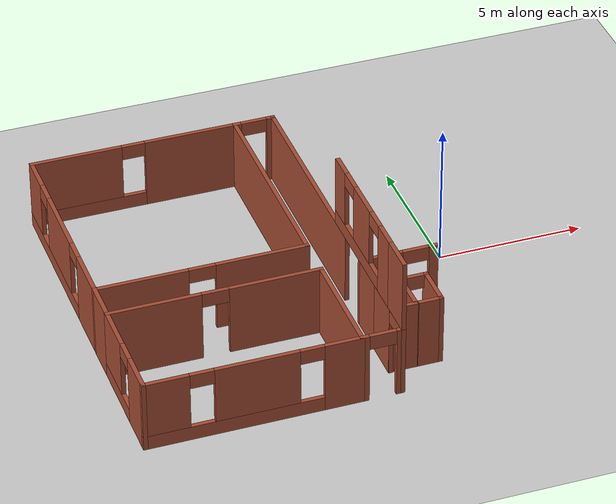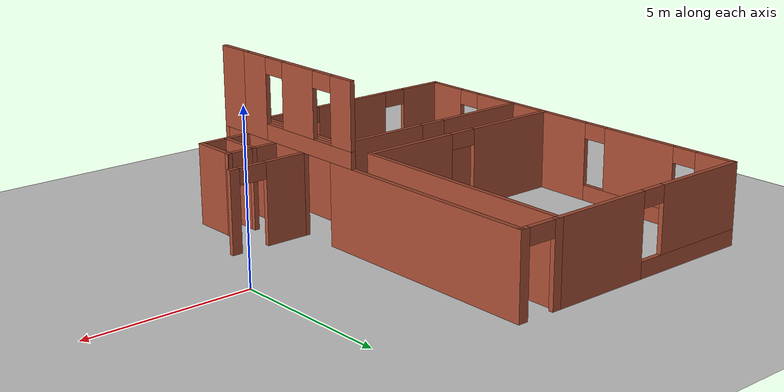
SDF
<sdf version="1.7">
 <world name="default">
  <model name="ground_plane">
   <static>1</static>
   <link name="link">
    <collision name="collision">
     <geometry><plane><normal>0 0 1</normal><size>100 100</size></plane></geometry>
     <surface>
      <contact><collide_bitmask>65535</collide_bitmask></contact>
      <friction><ode><mu>100</mu><mu2>50</mu2></ode></friction>
     </surface>
    </collision>
    <visual name="visual">
     <cast_shadows>0</cast_shadows>
     <geometry><plane><normal>0 0 1</normal><size>100 100</size></plane></geometry>
     <material>
      <script><uri>file://media/materials/scripts/gazebo.material</uri><name>Gazebo/Grey</name></script>
     </material>
    </visual>
   </link>
  </model>
  <model name="test_building">
   <link name="Wall_145">
    <collision name="Wall_145_Collision">
     <geometry><box><size>1.5 0.15 2.5</size></box></geometry>
     <pose>0 0 1.25 0 -0 0</pose>
    </collision>
    <visual name="Wall_145_Visual">
     <pose>0 0 1.25 0 -0 0</pose>
     <geometry><box><size>1.5 0.15 2.5</size></box></geometry>
     <material>
      <script><uri>file://media/materials/scripts/gazebo.material</uri><name>Gazebo/Bricks</name></script>
      <ambient>1 1 1 1</ambient>
     </material>
     <meta><layer>0</layer></meta>
    </visual>
    <pose>-3.7 -3.125 0 0 -0 -1.5708</pose>
   </link>
   <link name="Wall_146">
    <collision name="Wall_146_Collision">
     <geometry><box><size>1.5 0.15 2.5</size></box></geometry>
     <pose>0 0 1.25 0 -0 0</pose>
    </collision>
    <visual name="Wall_146_Visual">
     <pose>0 0 1.25 0 -0 0</pose>
     <geometry><box><size>1.5 0.15 2.5</size></box></geometry>
     <material>
      <script><uri>file://media/materials/scripts/gazebo.material</uri><name>Gazebo/Bricks</name></script>
      <ambient>1 1 1 1</ambient>
     </material>
     <meta><layer>0</layer></meta>
    </visual>
    <pose>-3.7 -4.475 0 0 -0 -1.5708</pose>
   </link>
   <link name="Wall_147">
    <collision name="Wall_147_Collision">
     <geometry><box><size>1 0.15 2.5</size></box></geometry>
     <pose>0 0 1.25 0 -0 0</pose>
    </collision>
    <visual name="Wall_147_Visual">
     <pose>0 0 1.25 0 -0 0</pose>
     <geometry><box><size>1 0.15 2.5</size></box></geometry>
     <material>
      <script><uri>file://media/materials/scripts/gazebo.material</uri><name>Gazebo/Bricks</name></script>
      <ambient>1 1 1 1</ambient>
     </material>
     <meta><layer>0</layer></meta>
    </visual>
    <pose>-3.275 -5.15 0 0 -0 0</pose>
   </link>
   <link name="Wall_148">
    <collision name="Wall_148_Collision">
     <geometry><box><size>1.5 0.15 2.5</size></box></geometry>
     <pose>0 0 1.25 0 -0 0</pose>
    </collision>
    <visual name="Wall_148_Visual">
     <pose>0 0 1.25 0 -0 0</pose>
     <geometry><box><size>1.5 0.15 2.5</size></box></geometry>
     <material>
      <script><uri>file://media/materials/scripts/gazebo.material</uri><name>Gazebo/Bricks</name></script>
      <ambient>1 1 1 1</ambient>
     </material>
     <meta><layer>0</layer></meta>
    </visual>
    <pose>-2.85 -4.475 0 0 -0 1.5708</pose>
   </link>
   <link name="Wall_149">
    <pose>-3.275 -3.8 0 0 -0 3.14159</pose>
    <visual name="Wall_149_Visual_0">
     <pose>-0.424986 0 1.25 0 -0 0</pose>
     <geometry><box><size>0.150029 0.15 2.5</size></box></geometry>
     <material>
      <script><uri>file://media/materials/scripts/gazebo.material</uri><name>Gazebo/Bricks</name></script>
      <ambient>1 1 1 1</ambient>
     </material>
     <meta><layer>0</layer></meta>
    </visual>
    <collision name="Wall_149_Collision_0">
     <geometry><box><size>0.150029 0.15 2.5</size></box></geometry>
     <pose>-0.424986 0 1.25 0 -0 0</pose>
    </collision>
    <visual name="Wall_149_Visual_1">
     <pose>0.425014 0 1.25 0 -0 0</pose>
     <geometry><box><size>0.149971 0.15 2.5</size></box></geometry>
     <material>
      <script><uri>file://media/materials/scripts/gazebo.material</uri><name>Gazebo/Bricks</name></script>
      <ambient>1 1 1 1</ambient>
     </material>
     <meta><layer>0</layer></meta>
    </visual>
    <collision name="Wall_149_Collision_1">
     <geometry><box><size>0.149971 0.15 2.5</size></box></geometry>
     <pose>0.425014 0 1.25 0 -0 0</pose>
    </collision>
    <visual name="Wall_149_Visual_2">
     <pose>2.9e-05 0 2.25 0 -0 0</pose>
     <geometry><box><size>0.7 0.15 0.5</size></box></geometry>
     <material>
      <script><uri>file://media/materials/scripts/gazebo.material</uri><name>Gazebo/Bricks</name></script>
      <ambient>1 1 1 1</ambient>
     </material>
     <meta><layer>0</layer></meta>
    </visual>
    <collision name="Wall_149_Collision_2">
     <geometry><box><size>0.7 0.15 0.5</size></box></geometry>
     <pose>2.9e-05 0 2.25 0 -0 0</pose>
    </collision>
   </link>
   <link name="Wall_151">
    <collision name="Wall_151_Collision">
     <geometry><box><size>1 0.15 2.5</size></box></geometry>
     <pose>0 0 1.25 0 -0 0</pose>
    </collision>
    <visual name="Wall_151_Visual">
     <pose>0 0 1.25 0 -0 0</pose>
     <geometry><box><size>1 0.15 2.5</size></box></geometry>
     <material>
      <script><uri>file://media/materials/scripts/gazebo.material</uri><name>Gazebo/Bricks</name></script>
      <ambient>1 1 1 1</ambient>
     </material>
     <meta><layer>0</layer></meta>
    </visual>
    <pose>-2.425 -5.15 0 0 -0 0</pose>
   </link>
   <link name="Wall_152">
    <collision name="Wall_152_Collision">
     <geometry><box><size>1.5 0.15 2.5</size></box></geometry>
     <pose>0 0 1.25 0 -0 0</pose>
    </collision>
    <visual name="Wall_152_Visual">
     <pose>0 0 1.25 0 -0 0</pose>
     <geometry><box><size>1.5 0.15 2.5</size></box></geometry>
     <material>
      <script><uri>file://media/materials/scripts/gazebo.material</uri><name>Gazebo/Bricks</name></script>
      <ambient>1 1 1 1</ambient>
     </material>
     <meta><layer>0</layer></meta>
    </visual>
    <pose>-2 -4.475 0 0 -0 1.5708</pose>
   </link>
   <link name="Wall_153">
    <pose>-2.425 -3.8 0 0 -0 3.14159</pose>
    <visual name="Wall_153_Visual_0">
     <pose>-0.426005 0 1.25 0 -0 0</pose>
     <geometry><box><size>0.147991 0.15 2.5</size></box></geometry>
     <material>
      <script><uri>file://media/materials/scripts/gazebo.material</uri><name>Gazebo/Bricks</name></script>
      <ambient>1 1 1 1</ambient>
     </material>
     <meta><layer>0</layer></meta>
    </visual>
    <collision name="Wall_153_Collision_0">
     <geometry><box><size>0.147991 0.15 2.5</size></box></geometry>
     <pose>-0.426005 0 1.25 0 -0 0</pose>
    </collision>
    <visual name="Wall_153_Visual_1">
     <pose>0.423995 0 1.25 0 -0 0</pose>
     <geometry><box><size>0.152009 0.15 2.5</size></box></geometry>
     <material>
      <script><uri>file://media/materials/scripts/gazebo.material</uri><name>Gazebo/Bricks</name></script>
      <ambient>1 1 1 1</ambient>
     </material>
     <meta><layer>0</layer></meta>
    </visual>
    <collision name="Wall_153_Collision_1">
     <geometry><box><size>0.152009 0.15 2.5</size></box></geometry>
     <pose>0.423995 0 1.25 0 -0 0</pose>
    </collision>
    <visual name="Wall_153_Visual_2">
     <pose>-0.002009 0 2.25 0 -0 0</pose>
     <geometry><box><size>0.7 0.15 0.5</size></box></geometry>
     <material>
      <script><uri>file://media/materials/scripts/gazebo.material</uri><name>Gazebo/Bricks</name></script>
      <ambient>1 1 1 1</ambient>
     </material>
     <meta><layer>0</layer></meta>
    </visual>
    <collision name="Wall_153_Collision_2">
     <geometry><box><size>0.7 0.15 0.5</size></box></geometry>
     <pose>-0.002009 0 2.25 0 -0 0</pose>
    </collision>
   </link>
   <link name="Wall_175">
    <pose>-2.425 -2.45 0 0 -0 0</pose>
    <visual name="Wall_175_Visual_0">
     <pose>-0.608466 0 1.25 0 -0 0</pose>
     <geometry><box><size>1.48307 0.15 2.5</size></box></geometry>
     <material>
      <script><uri>file://media/materials/scripts/gazebo.material</uri><name>Gazebo/Bricks</name></script>
      <ambient>1 1 1 1</ambient>
     </material>
     <meta><layer>0</layer></meta>
    </visual>
    <collision name="Wall_175_Collision_0">
     <geometry><box><size>1.48307 0.15 2.5</size></box></geometry>
     <pose>-0.608466 0 1.25 0 -0 0</pose>
    </collision>
    <visual name="Wall_175_Visual_1">
     <pose>1.19153 0 1.25 0 -0 0</pose>
     <geometry><box><size>0.316932 0.15 2.5</size></box></geometry>
     <material>
      <script><uri>file://media/materials/scripts/gazebo.material</uri><name>Gazebo/Bricks</name></script>
      <ambient>1 1 1 1</ambient>
     </material>
     <meta><layer>0</layer></meta>
    </visual>
    <collision name="Wall_175_Collision_1">
     <geometry><box><size>0.316932 0.15 2.5</size></box></geometry>
     <pose>1.19153 0 1.25 0 -0 0</pose>
    </collision>
    <visual name="Wall_175_Visual_2">
     <pose>0.583068 0 2.25 0 -0 0</pose>
     <geometry><box><size>0.9 0.15 0.5</size></box></geometry>
     <material>
      <script><uri>file://media/materials/scripts/gazebo.material</uri><name>Gazebo/Bricks</name></script>
      <ambient>1 1 1 1</ambient>
     </material>
     <meta><layer>0</layer></meta>
    </visual>
    <collision name="Wall_175_Collision_2">
     <geometry><box><size>0.9 0.15 0.5</size></box></geometry>
     <pose>0.583068 0 2.25 0 -0 0</pose>
    </collision>
   </link>
   <link name="Wall_188">
    <pose>-3.7 -5.7 0 0 -0 1.5708</pose>
    <visual name="Wall_188_Visual_0">
     <pose>-0.537216 0 1.25 0 -0 0</pose>
     <geometry><box><size>0.175568 0.15 2.5</size></box></geometry>
     <material>
      <script><uri>file://media/materials/scripts/gazebo.material</uri><name>Gazebo/Bricks</name></script>
      <ambient>1 1 1 1</ambient>
     </material>
     <meta><layer>0</layer></meta>
    </visual>
    <collision name="Wall_188_Collision_0">
     <geometry><box><size>0.175568 0.15 2.5</size></box></geometry>
     <pose>-0.537216 0 1.25 0 -0 0</pose>
    </collision>
    <visual name="Wall_188_Visual_1">
     <pose>0.537784 0 1.25 0 -0 0</pose>
     <geometry><box><size>0.174432 0.15 2.5</size></box></geometry>
     <material>
      <script><uri>file://media/materials/scripts/gazebo.material</uri><name>Gazebo/Bricks</name></script>
      <ambient>1 1 1 1</ambient>
     </material>
     <meta><layer>0</layer></meta>
    </visual>
    <collision name="Wall_188_Collision_1">
     <geometry><box><size>0.174432 0.15 2.5</size></box></geometry>
     <pose>0.537784 0 1.25 0 -0 0</pose>
    </collision>
    <visual name="Wall_188_Visual_2">
     <pose>0.000568 0 2.25 0 -0 0</pose>
     <geometry><box><size>0.9 0.15 0.5</size></box></geometry>
     <material>
      <script><uri>file://media/materials/scripts/gazebo.material</uri><name>Gazebo/Bricks</name></script>
      <ambient>1 1 1 1</ambient>
     </material>
     <meta><layer>0</layer></meta>
    </visual>
    <collision name="Wall_188_Collision_2">
     <geometry><box><size>0.9 0.15 0.5</size></box></geometry>
     <pose>0.000568 0 2.25 0 -0 0</pose>
    </collision>
   </link>
   <link name="Wall_194">
    <pose>-4.375 -6.25 0 0 -0 0</pose>
    <visual name="Wall_194_Visual_0">
     <pose>-0.59609 0 1.25 0 -0 0</pose>
     <geometry><box><size>0.30782 0.15 2.5</size></box></geometry>
     <material>
      <script><uri>file://media/materials/scripts/gazebo.material</uri><name>Gazebo/Bricks</name></script>
      <ambient>1 1 1 1</ambient>
     </material>
     <meta><layer>0</layer></meta>
    </visual>
    <collision name="Wall_194_Collision_0">
     <geometry><box><size>0.30782 0.15 2.5</size></box></geometry>
     <pose>-0.59609 0 1.25 0 -0 0</pose>
    </collision>
    <visual name="Wall_194_Visual_1">
     <pose>0.60391 0 1.25 0 -0 0</pose>
     <geometry><box><size>0.29218 0.15 2.5</size></box></geometry>
     <material>
      <script><uri>file://media/materials/scripts/gazebo.material</uri><name>Gazebo/Bricks</name></script>
      <ambient>1 1 1 1</ambient>
     </material>
     <meta><layer>0</layer></meta>
    </visual>
    <collision name="Wall_194_Collision_1">
     <geometry><box><size>0.29218 0.15 2.5</size></box></geometry>
     <pose>0.60391 0 1.25 0 -0 0</pose>
    </collision>
    <visual name="Wall_194_Visual_2">
     <pose>0.00782 0 2.25 0 -0 0</pose>
     <geometry><box><size>0.9 0.15 0.5</size></box></geometry>
     <material>
      <script><uri>file://media/materials/scripts/gazebo.material</uri><name>Gazebo/Bricks</name></script>
      <ambient>1 1 1 1</ambient>
     </material>
     <meta><layer>0</layer></meta>
    </visual>
    <collision name="Wall_194_Collision_2">
     <geometry><box><size>0.9 0.15 0.5</size></box></geometry>
     <pose>0.00782 0 2.25 0 -0 0</pose>
    </collision>
   </link>
   <link name="Wall_197">
    <pose>-8.6 6.25 0 0 -0 3.14159</pose>
    <visual name="Wall_197_Visual_0">
     <pose>-1.99098 0 1.25 0 -0 0</pose>
     <geometry><box><size>3.26805 0.15 2.5</size></box></geometry>
     <material>
      <script><uri>file://media/materials/scripts/gazebo.material</uri><name>Gazebo/Bricks</name></script>
      <ambient>1 1 1 1</ambient>
     </material>
     <meta><layer>0</layer></meta>
    </visual>
    <collision name="Wall_197_Collision_0">
     <geometry><box><size>3.26805 0.15 2.5</size></box></geometry>
     <pose>-1.99098 0 1.25 0 -0 0</pose>
    </collision>
    <visual name="Wall_197_Visual_1">
     <pose>1.63402 0 0.25 0 -0 0</pose>
     <geometry><box><size>3.98195 0.15 0.5</size></box></geometry>
     <material>
      <script><uri>file://media/materials/scripts/gazebo.material</uri><name>Gazebo/Bricks</name></script>
      <ambient>1 1 1 1</ambient>
     </material>
     <meta><layer>0</layer></meta>
    </visual>
    <collision name="Wall_197_Collision_1">
     <geometry><box><size>3.98195 0.15 0.5</size></box></geometry>
     <pose>1.63402 0 0.25 0 -0 0</pose>
    </collision>
    <visual name="Wall_197_Visual_2">
     <pose>2.03402 0 1.5 0 -0 0</pose>
     <geometry><box><size>3.18195 0.15 2</size></box></geometry>
     <material>
      <script><uri>file://media/materials/scripts/gazebo.material</uri><name>Gazebo/Bricks</name></script>
      <ambient>1 1 1 1</ambient>
     </material>
     <meta><layer>0</layer></meta>
    </visual>
    <collision name="Wall_197_Collision_2">
     <geometry><box><size>3.18195 0.15 2</size></box></geometry>
     <pose>2.03402 0 1.5 0 -0 0</pose>
    </collision>
    <visual name="Wall_197_Visual_3">
     <pose>0.043049 0 2.25 0 -0 0</pose>
     <geometry><box><size>0.8 0.15 0.5</size></box></geometry>
     <material>
      <script><uri>file://media/materials/scripts/gazebo.material</uri><name>Gazebo/Bricks</name></script>
      <ambient>1 1 1 1</ambient>
     </material>
     <meta><layer>0</layer></meta>
    </visual>
    <collision name="Wall_197_Collision_3">
     <geometry><box><size>0.8 0.15 0.5</size></box></geometry>
     <pose>0.043049 0 2.25 0 -0 0</pose>
    </collision>
   </link>
   <link name="Wall_201">
    <collision name="Wall_201_Collision">
     <geometry><box><size>3.95 0.15 2.5</size></box></geometry>
     <pose>0 0 1.25 0 -0 0</pose>
    </collision>
    <visual name="Wall_201_Visual">
     <pose>0 0 1.25 0 -0 0</pose>
     <geometry><box><size>3.95 0.15 2.5</size></box></geometry>
     <material>
      <script><uri>file://media/materials/scripts/gazebo.material</uri><name>Gazebo/Bricks</name></script>
      <ambient>1 1 1 1</ambient>
     </material>
     <meta><layer>0</layer></meta>
    </visual>
    <pose>-5.05 -4.35 0 0 -0 1.5708</pose>
   </link>
   <link name="Wall_204">
    <collision name="Wall_204_Collision">
     <geometry><box><size>7.5 0.15 2.5</size></box></geometry>
     <pose>0 0 1.25 0 -0 0</pose>
    </collision>
    <visual name="Wall_204_Visual">
     <pose>0 0 1.25 0 -0 0</pose>
     <geometry><box><size>7.5 0.15 2.5</size></box></geometry>
     <material>
      <script><uri>file://media/materials/scripts/gazebo.material</uri><name>Gazebo/Bricks</name></script>
      <ambient>1 1 1 1</ambient>
     </material>
     <meta><layer>0</layer></meta>
    </visual>
    <pose>-5.05 2.575 0 0 -0 1.5708</pose>
   </link>
   <link name="Wall_206">
    <pose>-8.6 -1.1 0 0 -0 3.14159</pose>
    <visual name="Wall_206_Visual_0">
     <pose>-2.03867 0 1.25 0 -0 0</pose>
     <geometry><box><size>3.17265 0.15 2.5</size></box></geometry>
     <material>
      <script><uri>file://media/materials/scripts/gazebo.material</uri><name>Gazebo/Bricks</name></script>
      <ambient>1 1 1 1</ambient>
     </material>
     <meta><layer>0</layer></meta>
    </visual>
    <collision name="Wall_206_Collision_0">
     <geometry><box><size>3.17265 0.15 2.5</size></box></geometry>
     <pose>-2.03867 0 1.25 0 -0 0</pose>
    </collision>
    <visual name="Wall_206_Visual_1">
     <pose>2.03633 0 1.25 0 -0 0</pose>
     <geometry><box><size>3.17735 0.15 2.5</size></box></geometry>
     <material>
      <script><uri>file://media/materials/scripts/gazebo.material</uri><name>Gazebo/Bricks</name></script>
      <ambient>1 1 1 1</ambient>
     </material>
     <meta><layer>0</layer></meta>
    </visual>
    <collision name="Wall_206_Collision_1">
     <geometry><box><size>3.17735 0.15 2.5</size></box></geometry>
     <pose>2.03633 0 1.25 0 -0 0</pose>
    </collision>
    <visual name="Wall_206_Visual_2">
     <pose>-0.002349 0 2.25 0 -0 0</pose>
     <geometry><box><size>0.9 0.15 0.5</size></box></geometry>
     <material>
      <script><uri>file://media/materials/scripts/gazebo.material</uri><name>Gazebo/Bricks</name></script>
      <ambient>1 1 1 1</ambient>
     </material>
     <meta><layer>0</layer></meta>
    </visual>
    <collision name="Wall_206_Collision_2">
     <geometry><box><size>0.9 0.15 0.5</size></box></geometry>
     <pose>-0.002349 0 2.25 0 -0 0</pose>
    </collision>
   </link>
   <link name="Wall_207">
    <pose>-12.15 2.575 0 0 -0 1.5708</pose>
    <visual name="Wall_207_Visual_0">
     <pose>-2.79196 0 1.25 0 -0 0</pose>
     <geometry><box><size>1.91607 0.15 2.5</size></box></geometry>
     <material>
      <script><uri>file://media/materials/scripts/gazebo.material</uri><name>Gazebo/Bricks</name></script>
      <ambient>1 1 1 1</ambient>
     </material>
     <meta><layer>0</layer></meta>
    </visual>
    <collision name="Wall_207_Collision_0">
     <geometry><box><size>1.91607 0.15 2.5</size></box></geometry>
     <pose>-2.79196 0 1.25 0 -0 0</pose>
    </collision>
    <visual name="Wall_207_Visual_1">
     <pose>0.958035 0 0.25 0 -0 0</pose>
     <geometry><box><size>5.58393 0.15 0.5</size></box></geometry>
     <material>
      <script><uri>file://media/materials/scripts/gazebo.material</uri><name>Gazebo/Bricks</name></script>
      <ambient>1 1 1 1</ambient>
     </material>
     <meta><layer>0</layer></meta>
    </visual>
    <collision name="Wall_207_Collision_1">
     <geometry><box><size>5.58393 0.15 0.5</size></box></geometry>
     <pose>0.958035 0 0.25 0 -0 0</pose>
    </collision>
    <visual name="Wall_207_Visual_2">
     <pose>0.281034 0 1.5 0 -0 0</pose>
     <geometry><box><size>2.62993 0.15 2</size></box></geometry>
     <material>
      <script><uri>file://media/materials/scripts/gazebo.material</uri><name>Gazebo/Bricks</name></script>
      <ambient>1 1 1 1</ambient>
     </material>
     <meta><layer>0</layer></meta>
    </visual>
    <collision name="Wall_207_Collision_2">
     <geometry><box><size>2.62993 0.15 2</size></box></geometry>
     <pose>0.281034 0 1.5 0 -0 0</pose>
    </collision>
    <visual name="Wall_207_Visual_3">
     <pose>3.073 0 1.5 0 -0 0</pose>
     <geometry><box><size>1.354 0.15 2</size></box></geometry>
     <material>
      <script><uri>file://media/materials/scripts/gazebo.material</uri><name>Gazebo/Bricks</name></script>
      <ambient>1 1 1 1</ambient>
     </material>
     <meta><layer>0</layer></meta>
    </visual>
    <collision name="Wall_207_Collision_3">
     <geometry><box><size>1.354 0.15 2</size></box></geometry>
     <pose>3.073 0 1.5 0 -0 0</pose>
    </collision>
    <visual name="Wall_207_Visual_4">
     <pose>-1.43393 0 2.25 0 -0 0</pose>
     <geometry><box><size>0.8 0.15 0.5</size></box></geometry>
     <material>
      <script><uri>file://media/materials/scripts/gazebo.material</uri><name>Gazebo/Bricks</name></script>
      <ambient>1 1 1 1</ambient>
     </material>
     <meta><layer>0</layer></meta>
    </visual>
    <collision name="Wall_207_Collision_4">
     <geometry><box><size>0.8 0.15 0.5</size></box></geometry>
     <pose>-1.43393 0 2.25 0 -0 0</pose>
    </collision>
    <visual name="Wall_207_Visual_5">
     <pose>1.996 0 2.25 0 -0 0</pose>
     <geometry><box><size>0.8 0.15 0.5</size></box></geometry>
     <material>
      <script><uri>file://media/materials/scripts/gazebo.material</uri><name>Gazebo/Bricks</name></script>
      <ambient>1 1 1 1</ambient>
     </material>
     <meta><layer>0</layer></meta>
    </visual>
    <collision name="Wall_207_Collision_5">
     <geometry><box><size>0.8 0.15 0.5</size></box></geometry>
     <pose>1.996 0 2.25 0 -0 0</pose>
    </collision>
   </link>
   <link name="Wall_209">
    <pose>-8.6 -2.45 0 0 -0 3.14159</pose>
    <visual name="Wall_209_Visual_0">
     <pose>-2.03867 0 1.25 0 -0 0</pose>
     <geometry><box><size>3.17265 0.15 2.5</size></box></geometry>
     <material>
      <script><uri>file://media/materials/scripts/gazebo.material</uri><name>Gazebo/Bricks</name></script>
      <ambient>1 1 1 1</ambient>
     </material>
     <meta><layer>0</layer></meta>
    </visual>
    <collision name="Wall_209_Collision_0">
     <geometry><box><size>3.17265 0.15 2.5</size></box></geometry>
     <pose>-2.03867 0 1.25 0 -0 0</pose>
    </collision>
    <visual name="Wall_209_Visual_1">
     <pose>2.03633 0 1.25 0 -0 0</pose>
     <geometry><box><size>3.17735 0.15 2.5</size></box></geometry>
     <material>
      <script><uri>file://media/materials/scripts/gazebo.material</uri><name>Gazebo/Bricks</name></script>
      <ambient>1 1 1 1</ambient>
     </material>
     <meta><layer>0</layer></meta>
    </visual>
    <collision name="Wall_209_Collision_1">
     <geometry><box><size>3.17735 0.15 2.5</size></box></geometry>
     <pose>2.03633 0 1.25 0 -0 0</pose>
    </collision>
    <visual name="Wall_209_Visual_2">
     <pose>-0.002349 0 2.25 0 -0 0</pose>
     <geometry><box><size>0.9 0.15 0.5</size></box></geometry>
     <material>
      <script><uri>file://media/materials/scripts/gazebo.material</uri><name>Gazebo/Bricks</name></script>
      <ambient>1 1 1 1</ambient>
     </material>
     <meta><layer>0</layer></meta>
    </visual>
    <collision name="Wall_209_Collision_2">
     <geometry><box><size>0.9 0.15 0.5</size></box></geometry>
     <pose>-0.002349 0 2.25 0 -0 0</pose>
    </collision>
   </link>
   <link name="Wall_210">
    <collision name="Wall_210_Collision">
     <geometry><box><size>1.5 0.15 2.5</size></box></geometry>
     <pose>0 0 1.25 0 -0 0</pose>
    </collision>
    <visual name="Wall_210_Visual">
     <pose>0 0 1.25 0 -0 0</pose>
     <geometry><box><size>1.5 0.15 2.5</size></box></geometry>
     <material>
      <script><uri>file://media/materials/scripts/gazebo.material</uri><name>Gazebo/Bricks</name></script>
      <ambient>1 1 1 1</ambient>
     </material>
     <meta><layer>0</layer></meta>
    </visual>
    <pose>-12.15 -1.775 0 0 -0 1.5708</pose>
   </link>
   <link name="Wall_212">
    <pose>-8.6 -6.25 0 0 -0 3.14159</pose>
    <visual name="Wall_212_Visual_0">
     <pose>-2.96938 0 1.25 0 -0 0</pose>
     <geometry><box><size>1.31123 0.15 2.5</size></box></geometry>
     <material>
      <script><uri>file://media/materials/scripts/gazebo.material</uri><name>Gazebo/Bricks</name></script>
      <ambient>1 1 1 1</ambient>
     </material>
     <meta><layer>0</layer></meta>
    </visual>
    <collision name="Wall_212_Collision_0">
     <geometry><box><size>1.31123 0.15 2.5</size></box></geometry>
     <pose>-2.96938 0 1.25 0 -0 0</pose>
    </collision>
    <visual name="Wall_212_Visual_1">
     <pose>0.655615 0 0.25 0 -0 0</pose>
     <geometry><box><size>5.93877 0.15 0.5</size></box></geometry>
     <material>
      <script><uri>file://media/materials/scripts/gazebo.material</uri><name>Gazebo/Bricks</name></script>
      <ambient>1 1 1 1</ambient>
     </material>
     <meta><layer>0</layer></meta>
    </visual>
    <collision name="Wall_212_Collision_1">
     <geometry><box><size>5.93877 0.15 0.5</size></box></geometry>
     <pose>0.655615 0 0.25 0 -0 0</pose>
    </collision>
    <visual name="Wall_212_Visual_2">
     <pose>-0.121851 0 1.5 0 -0 0</pose>
     <geometry><box><size>2.78384 0.15 2</size></box></geometry>
     <material>
      <script><uri>file://media/materials/scripts/gazebo.material</uri><name>Gazebo/Bricks</name></script>
      <ambient>1 1 1 1</ambient>
     </material>
     <meta><layer>0</layer></meta>
    </visual>
    <collision name="Wall_212_Collision_2">
     <geometry><box><size>2.78384 0.15 2</size></box></geometry>
     <pose>-0.121851 0 1.5 0 -0 0</pose>
    </collision>
    <visual name="Wall_212_Visual_3">
     <pose>2.84753 0 1.5 0 -0 0</pose>
     <geometry><box><size>1.55493 0.15 2</size></box></geometry>
     <material>
      <script><uri>file://media/materials/scripts/gazebo.material</uri><name>Gazebo/Bricks</name></script>
      <ambient>1 1 1 1</ambient>
     </material>
     <meta><layer>0</layer></meta>
    </visual>
    <collision name="Wall_212_Collision_3">
     <geometry><box><size>1.55493 0.15 2</size></box></geometry>
     <pose>2.84753 0 1.5 0 -0 0</pose>
    </collision>
    <visual name="Wall_212_Visual_4">
     <pose>-1.91377 0 2.25 0 -0 0</pose>
     <geometry><box><size>0.8 0.15 0.5</size></box></geometry>
     <material>
      <script><uri>file://media/materials/scripts/gazebo.material</uri><name>Gazebo/Bricks</name></script>
      <ambient>1 1 1 1</ambient>
     </material>
     <meta><layer>0</layer></meta>
    </visual>
    <collision name="Wall_212_Collision_4">
     <geometry><box><size>0.8 0.15 0.5</size></box></geometry>
     <pose>-1.91377 0 2.25 0 -0 0</pose>
    </collision>
    <visual name="Wall_212_Visual_5">
     <pose>1.67007 0 2.25 0 -0 0</pose>
     <geometry><box><size>0.8 0.15 0.5</size></box></geometry>
     <material>
      <script><uri>file://media/materials/scripts/gazebo.material</uri><name>Gazebo/Bricks</name></script>
      <ambient>1 1 1 1</ambient>
     </material>
     <meta><layer>0</layer></meta>
    </visual>
    <collision name="Wall_212_Collision_5">
     <geometry><box><size>0.8 0.15 0.5</size></box></geometry>
     <pose>1.67007 0 2.25 0 -0 0</pose>
    </collision>
   </link>
   <link name="Wall_213">
    <pose>-12.15 -4.35 0 0 -0 1.5708</pose>
    <visual name="Wall_213_Visual_0">
     <pose>-1.24527 0 1.25 0 -0 0</pose>
     <geometry><box><size>1.45945 0.15 2.5</size></box></geometry>
     <material>
      <script><uri>file://media/materials/scripts/gazebo.material</uri><name>Gazebo/Bricks</name></script>
      <ambient>1 1 1 1</ambient>
     </material>
     <meta><layer>0</layer></meta>
    </visual>
    <collision name="Wall_213_Collision_0">
     <geometry><box><size>1.45945 0.15 2.5</size></box></geometry>
     <pose>-1.24527 0 1.25 0 -0 0</pose>
    </collision>
    <visual name="Wall_213_Visual_1">
     <pose>0.729727 0 0.25 0 -0 0</pose>
     <geometry><box><size>2.49055 0.15 0.5</size></box></geometry>
     <material>
      <script><uri>file://media/materials/scripts/gazebo.material</uri><name>Gazebo/Bricks</name></script>
      <ambient>1 1 1 1</ambient>
     </material>
     <meta><layer>0</layer></meta>
    </visual>
    <collision name="Wall_213_Collision_1">
     <geometry><box><size>2.49055 0.15 0.5</size></box></geometry>
     <pose>0.729727 0 0.25 0 -0 0</pose>
    </collision>
    <visual name="Wall_213_Visual_2">
     <pose>1.12973 0 1.5 0 -0 0</pose>
     <geometry><box><size>1.69055 0.15 2</size></box></geometry>
     <material>
      <script><uri>file://media/materials/scripts/gazebo.material</uri><name>Gazebo/Bricks</name></script>
      <ambient>1 1 1 1</ambient>
     </material>
     <meta><layer>0</layer></meta>
    </visual>
    <collision name="Wall_213_Collision_2">
     <geometry><box><size>1.69055 0.15 2</size></box></geometry>
     <pose>1.12973 0 1.5 0 -0 0</pose>
    </collision>
    <visual name="Wall_213_Visual_3">
     <pose>-0.115546 0 2.25 0 -0 0</pose>
     <geometry><box><size>0.8 0.15 0.5</size></box></geometry>
     <material>
      <script><uri>file://media/materials/scripts/gazebo.material</uri><name>Gazebo/Bricks</name></script>
      <ambient>1 1 1 1</ambient>
     </material>
     <meta><layer>0</layer></meta>
    </visual>
    <collision name="Wall_213_Collision_3">
     <geometry><box><size>0.8 0.15 0.5</size></box></geometry>
     <pose>-0.115546 0 2.25 0 -0 0</pose>
    </collision>
   </link>
   <link name="Wall_327">
    <collision name="Wall_327_Collision">
     <geometry><box><size>1.25 0.15 2.5</size></box></geometry>
     <pose>0 0 1.25 0 -0 0</pose>
    </collision>
    <visual name="Wall_327_Visual">
     <pose>0 0 1.25 0 -0 0</pose>
     <geometry><box><size>1.25 0.15 2.5</size></box></geometry>
     <material>
      <script><uri>file://media/materials/scripts/gazebo.material</uri><name>Gazebo/Bricks</name></script>
      <ambient>1 1 1 1</ambient>
     </material>
     <meta><layer>1</layer></meta>
    </visual>
    <pose>-3.7 -5.7 2.5 0 -0 1.5708</pose>
   </link>
   <link name="Wall_38">
    <collision name="Wall_38_Collision">
     <geometry><box><size>7.49967 0.15 2.5</size></box></geometry>
     <pose>0 0 1.25 0 -0 0</pose>
    </collision>
    <visual name="Wall_38_Visual">
     <pose>0 0 1.25 0 -0 0</pose>
     <geometry><box><size>7.49967 0.15 2.5</size></box></geometry>
     <material>
      <script><uri>file://media/materials/scripts/gazebo.material</uri><name>Gazebo/Bricks</name></script>
      <ambient>1 1 1 1</ambient>
     </material>
     <meta><layer>0</layer></meta>
    </visual>
    <pose>-3.7 2.575 0 0 -0 -1.5708</pose>
   </link>
   <link name="Wall_388">
    <pose>-3.7 -2.725 2.5 0 -0 1.5708</pose>
    <visual name="Wall_388_Visual_0">
     <pose>-1.96296 0 1.25 0 -0 0</pose>
     <geometry><box><size>1.07409 0.15 2.5</size></box></geometry>
     <material>
      <script><uri>file://media/materials/scripts/gazebo.material</uri><name>Gazebo/Bricks</name></script>
      <ambient>1 1 1 1</ambient>
     </material>
     <meta><layer>1</layer></meta>
    </visual>
    <collision name="Wall_388_Collision_0">
     <geometry><box><size>1.07409 0.15 2.5</size></box></geometry>
     <pose>-1.96296 0 1.25 0 -0 0</pose>
    </collision>
    <visual name="Wall_388_Visual_1">
     <pose>0.537045 0 0.25 0 -0 0</pose>
     <geometry><box><size>3.92591 0.15 0.5</size></box></geometry>
     <material>
      <script><uri>file://media/materials/scripts/gazebo.material</uri><name>Gazebo/Bricks</name></script>
      <ambient>1 1 1 1</ambient>
     </material>
     <meta><layer>1</layer></meta>
    </visual>
    <collision name="Wall_388_Collision_1">
     <geometry><box><size>3.92591 0.15 0.5</size></box></geometry>
     <pose>0.537045 0 0.25 0 -0 0</pose>
    </collision>
    <visual name="Wall_388_Visual_2">
     <pose>0.092545 0 1.5 0 -0 0</pose>
     <geometry><box><size>1.43691 0.15 2</size></box></geometry>
     <material>
      <script><uri>file://media/materials/scripts/gazebo.material</uri><name>Gazebo/Bricks</name></script>
      <ambient>1 1 1 1</ambient>
     </material>
     <meta><layer>1</layer></meta>
    </visual>
    <collision name="Wall_388_Collision_2">
     <geometry><box><size>1.43691 0.15 2</size></box></geometry>
     <pose>0.092545 0 1.5 0 -0 0</pose>
    </collision>
    <visual name="Wall_388_Visual_3">
     <pose>2.0555 0 1.5 0 -0 0</pose>
     <geometry><box><size>0.889 0.15 2</size></box></geometry>
     <material>
      <script><uri>file://media/materials/scripts/gazebo.material</uri><name>Gazebo/Bricks</name></script>
      <ambient>1 1 1 1</ambient>
     </material>
     <meta><layer>1</layer></meta>
    </visual>
    <collision name="Wall_388_Collision_3">
     <geometry><box><size>0.889 0.15 2</size></box></geometry>
     <pose>2.0555 0 1.5 0 -0 0</pose>
    </collision>
    <visual name="Wall_388_Visual_4">
     <pose>-1.02591 0 2.25 0 -0 0</pose>
     <geometry><box><size>0.8 0.15 0.5</size></box></geometry>
     <material>
      <script><uri>file://media/materials/scripts/gazebo.material</uri><name>Gazebo/Bricks</name></script>
      <ambient>1 1 1 1</ambient>
     </material>
     <meta><layer>1</layer></meta>
    </visual>
    <collision name="Wall_388_Collision_4">
     <geometry><box><size>0.8 0.15 0.5</size></box></geometry>
     <pose>-1.02591 0 2.25 0 -0 0</pose>
    </collision>
    <visual name="Wall_388_Visual_5">
     <pose>1.211 0 2.25 0 -0 0</pose>
     <geometry><box><size>0.8 0.15 0.5</size></box></geometry>
     <material>
      <script><uri>file://media/materials/scripts/gazebo.material</uri><name>Gazebo/Bricks</name></script>
      <ambient>1 1 1 1</ambient>
     </material>
     <meta><layer>1</layer></meta>
    </visual>
    <collision name="Wall_388_Collision_5">
     <geometry><box><size>0.8 0.15 0.5</size></box></geometry>
     <pose>1.211 0 2.25 0 -0 0</pose>
    </collision>
   </link>
   <link name="Wall_47">
    <pose>-4.375 6.25 0 0 -0 3.14159</pose>
    <visual name="Wall_47_Visual_0">
     <pose>-0.593129 0 1.25 0 -0 0</pose>
     <geometry><box><size>0.313742 0.15 2.5</size></box></geometry>
     <material>
      <script><uri>file://media/materials/scripts/gazebo.material</uri><name>Gazebo/Bricks</name></script>
      <ambient>1 1 1 1</ambient>
     </material>
     <meta><layer>0</layer></meta>
    </visual>
    <collision name="Wall_47_Collision_0">
     <geometry><box><size>0.313742 0.15 2.5</size></box></geometry>
     <pose>-0.593129 0 1.25 0 -0 0</pose>
    </collision>
    <visual name="Wall_47_Visual_1">
     <pose>0.606871 0 1.25 0 -0 0</pose>
     <geometry><box><size>0.286258 0.15 2.5</size></box></geometry>
     <material>
      <script><uri>file://media/materials/scripts/gazebo.material</uri><name>Gazebo/Bricks</name></script>
      <ambient>1 1 1 1</ambient>
     </material>
     <meta><layer>0</layer></meta>
    </visual>
    <collision name="Wall_47_Collision_1">
     <geometry><box><size>0.286258 0.15 2.5</size></box></geometry>
     <pose>0.606871 0 1.25 0 -0 0</pose>
    </collision>
    <visual name="Wall_47_Visual_2">
     <pose>0.013742 0 2.25 0 -0 0</pose>
     <geometry><box><size>0.9 0.15 0.5</size></box></geometry>
     <material>
      <script><uri>file://media/materials/scripts/gazebo.material</uri><name>Gazebo/Bricks</name></script>
      <ambient>1 1 1 1</ambient>
     </material>
     <meta><layer>0</layer></meta>
    </visual>
    <collision name="Wall_47_Collision_2">
     <geometry><box><size>0.9 0.15 0.5</size></box></geometry>
     <pose>0.013742 0 2.25 0 -0 0</pose>
    </collision>
   </link>
   <static>1</static>
  </model>
 </world>
</sdf>
